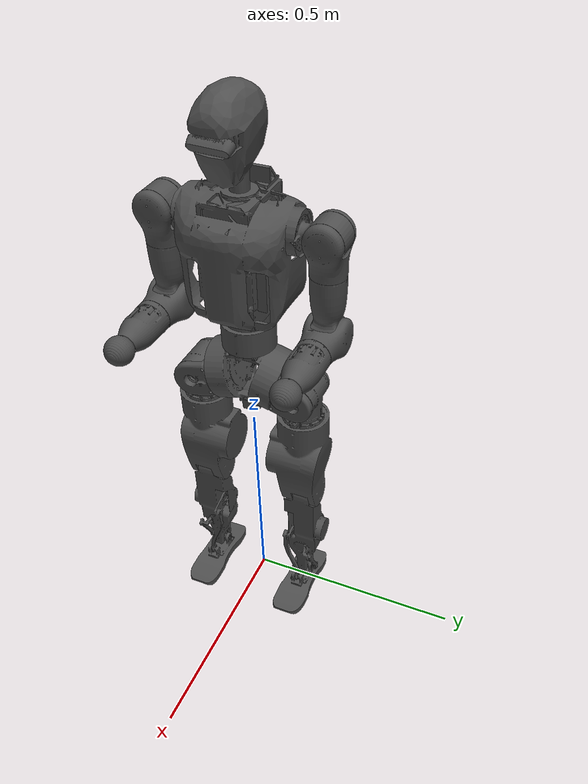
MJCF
<mujoco model="N1">
  <compiler angle="radian" meshdir="assets" autolimits="true"/>

  <default>
    <default class="N1">
      <default class="visual">
        <geom group="2" type="mesh" contype="0" conaffinity="0" rgba="0.3 0.3 0.3 1"/>
      </default>
      <default class="collision">
        <geom group="3" mass="0" density="0" rgba="0.7 0.7 0.7 1"/>
      </default>
      <default class="attach">
        <site group="4" type="sphere" size="0.005" rgba="1 1 1 1"/>
      </default>
      <default class="joint_8029E">
        <joint armature="0.12109824" range="0 0" actuatorfrcrange="-95 95"/>
      </default>
      <default class="joint_6043E">
        <joint armature="0.167592" range="0 0" actuatorfrcrange="-54 54"/>
      </default>
      <default class="joint_4530E">
        <joint armature="0.0312822" range="0 0" actuatorfrcrange="-30 30"/>
      </default>
      <default class="motor_8029E">
        <motor ctrlrange="-95 95"/>
      </default>
      <default class="motor_6043E">
        <motor ctrlrange="-54 54"/>
      </default>
      <default class="motor_4530E">
        <motor ctrlrange="-30 30"/>
      </default>
    </default>
  </default>

  <asset>
    <mesh name="base_link" content_type="model/stl" file="base_link.stl"/>
    <mesh name="torso_link" content_type="model/stl" file="torso_link.stl"/>
    <mesh name="camera_link" content_type="model/stl" file="camera_link.stl"/>
    <mesh name="imu_link" content_type="model/stl" file="imu_link.stl"/>

    <!-- left leg -->
    <mesh name="left_thigh_pitch_link" content_type="model/stl" file="left_thigh_pitch_link.stl"/>
    <mesh name="left_thigh_roll_link" content_type="model/stl" file="left_thigh_roll_link.stl"/>
    <mesh name="left_thigh_yaw_link" content_type="model/stl" file="left_thigh_yaw_link.stl"/>
    <mesh name="left_shank_pitch_link" content_type="model/stl" file="left_shank_pitch_link.stl"/>
    <mesh name="left_foot_roll_link" content_type="model/stl" file="left_foot_roll_link.stl"/>
    <mesh name="left_foot_pitch_link" content_type="model/stl" file="left_foot_pitch_link.stl"/>

    <!-- right leg -->
    <mesh name="right_thigh_pitch_link" content_type="model/stl" file="right_thigh_pitch_link.stl"/>
    <mesh name="right_thigh_roll_link" content_type="model/stl" file="right_thigh_roll_link.stl"/>
    <mesh name="right_thigh_yaw_link" content_type="model/stl" file="right_thigh_yaw_link.stl"/>
    <mesh name="right_shank_pitch_link" content_type="model/stl" file="right_shank_pitch_link.stl"/>
    <mesh name="right_foot_roll_link" content_type="model/stl" file="right_foot_roll_link.stl"/>
    <mesh name="right_foot_pitch_link" content_type="model/stl" file="right_foot_pitch_link.stl"/>

    <!-- waist -->
    <mesh name="waist_yaw_link" content_type="model/stl" file="waist_yaw_link.stl"/>

    <!-- left arm -->
    <mesh name="left_upper_arm_pitch_link" content_type="model/stl" file="left_upper_arm_pitch_link.stl"/>
    <mesh name="left_upper_arm_roll_link" content_type="model/stl" file="left_upper_arm_roll_link.stl"/>
    <mesh name="left_upper_arm_yaw_link" content_type="model/stl" file="left_upper_arm_yaw_link.stl"/>
    <mesh name="left_lower_arm_pitch_link" content_type="model/stl" file="left_lower_arm_pitch_link.stl"/>
    <mesh name="left_hand_yaw_link" content_type="model/stl" file="left_hand_yaw_link.stl"/>
    <mesh name="left_end_effector_link" content_type="model/stl" file="left_end_effector_link.stl"/>

    <!-- right arm -->
    <mesh name="right_upper_arm_pitch_link" content_type="model/stl" file="right_upper_arm_pitch_link.stl"/>
    <mesh name="right_upper_arm_roll_link" content_type="model/stl" file="right_upper_arm_roll_link.stl"/>
    <mesh name="right_upper_arm_yaw_link" content_type="model/stl" file="right_upper_arm_yaw_link.stl"/>
    <mesh name="right_lower_arm_pitch_link" content_type="model/stl" file="right_lower_arm_pitch_link.stl"/>
    <mesh name="right_hand_yaw_link" content_type="model/stl" file="right_hand_yaw_link.stl"/>
    <mesh name="right_end_effector_link" content_type="model/stl" file="right_end_effector_link.stl"/>
  </asset>

  <worldbody>
    <light mode="targetbodycom" target="base_link" pos="1.40 0 1.40"/>
    <body name="base_link" pos="0 0 0.7">
      <freejoint name="base_free_joint"/>
      <inertial pos="0.00025493 1.049e-05 -0.05502" quat="0.704566 0.709615 0.00402273 -0.00405522" mass="3.18"
        diaginertia="0.0111393 0.00899019 0.00761893"/>
      <geom class="visual" mesh="base_link"/>
      <geom class="collision" size="0.065 0.0675" pos="0 0 -0.05" quat="0.707388 0.706825 0 0" type="cylinder"/>
      <!-- left leg -->
      <body name="left_thigh_pitch_link" pos="0 0.050453 -0.067365" quat="0.991445 -0.130526 0 0">
        <inertial pos="-0.017114 0.035514 0.00025368" quat="0.233743 0.664829 -0.241027 0.667287" mass="1.31"
          diaginertia="0.00353445 0.00312547 0.00141578"/>
        <joint class="joint_8029E" name="left_hip_pitch_joint" pos="0 0 0" axis="0 1 0" range="-2.617 2.617"/>
        <geom class="visual" mesh="left_thigh_pitch_link"/>
        <body name="left_thigh_roll_link" pos="0 0.072 0" quat="0.991445 0.130526 0 0">
          <inertial pos="-0.0029103 -4.92e-06 -0.020023" quat="0.997816 -0.00139921 -0.0625676 -0.0211339" mass="1.35"
            diaginertia="0.00189889 0.00182639 0.00129812"/>
          <joint class="joint_6043E" name="left_hip_roll_joint" pos="0 0 0" axis="1 0 0" range="-0.261 1.57"/>
          <geom class="visual" mesh="left_thigh_roll_link"/>
          <geom class="collision" size="0.0415 0.06" quat="0.707388 0 0.706825 0" type="cylinder"/>
          <body name="left_thigh_yaw_link" pos="0 0 -0.0815">
            <inertial pos="0.0021441 -0.010608 -0.086616" quat="0.468171 -0.0465258 0.0232059 0.882107" mass="3.37"
              diaginertia="0.0149854 0.0146941 0.0052015"/>
            <joint class="joint_6043E" name="left_hip_yaw_joint" pos="0 0 0" axis="0 0 1" range="-2.617 2.617"/>
            <geom class="visual" mesh="left_thigh_yaw_link"/>
            <geom class="collision" size="0.06 0.095" pos="0 0 -0.08" type="cylinder"/>
            <body name="left_shank_pitch_link" pos="0 0 -0.2075">
              <inertial pos="0.0027736 0.0049964 -0.13547" quat="0.865626 -0.00504699 0.0114018 0.500536" mass="2.21"
                diaginertia="0.0135888 0.0135126 0.00161696"/>
              <joint class="joint_8029E" name="left_knee_pitch_joint" pos="0 0 0" axis="0 1 0" range="-0.0872 2.356"/>
              <geom class="visual" mesh="left_shank_pitch_link"/>
              <geom class="collision" size="0.04 0.1" pos="0 0 -0.12" type="cylinder"/>
              <body name="left_foot_roll_link" pos="0 0 -0.28">
                <inertial pos="0 0.0018625 0" quat="0.5 0.5 -0.5 0.5" mass="0.113"
                  diaginertia="2.927e-05 2.49e-05 1.175e-05"/>
                <joint class="joint_4530E" name="left_ankle_roll_joint" pos="0 0 0" axis="1 0 0" range="-0.436 0.436"/>
                <geom class="visual" mesh="left_foot_roll_link"/>
                <body name="left_foot_pitch_link">
                  <inertial pos="0.031083 -0.00011033 -0.031859" quat="5.38314e-05 0.70921 -0.0030347 0.704991"
                    mass="0.528" diaginertia="0.00183246 0.00168042 0.000253637"/>
                  <joint class="joint_4530E" name="left_ankle_pitch_joint" pos="0 0 0" axis="0 1 0"
                    range="-0.785 0.785"/>
                  <geom class="visual" mesh="left_foot_pitch_link"/>
                  <geom class="collision" type="mesh" mesh="left_foot_pitch_link"/>
                </body>
              </body>
            </body>
          </body>
        </body>
      </body>
      <!-- right leg -->
      <body name="right_thigh_pitch_link" pos="0 -0.050453 -0.067365" quat="0.991445 0.130526 0 0">
        <inertial pos="-0.017114 -0.035515 0.0002533" quat="-0.233728 0.66481 0.241038 0.667308" mass="1.31"
          diaginertia="0.00353425 0.00312543 0.00141582"/>
        <joint class="joint_8029E" name="right_hip_pitch_joint" pos="0 0 0" axis="0 1 0" range="-2.617 2.617"/>
        <geom class="visual" mesh="right_thigh_pitch_link"/>
        <body name="right_thigh_roll_link" pos="0 -0.072 0" quat="0.991445 -0.130526 0 0">
          <inertial pos="-0.0029092 1.208e-05 -0.020023" quat="0.997769 -0.000380296 -0.0626363 -0.0230831" mass="1.35"
            diaginertia="0.00189884 0.00182645 0.00129811"/>
          <joint class="joint_6043E" name="right_hip_roll_joint" pos="0 0 0" axis="1 0 0" range="-1.57 0.261"/>
          <geom class="visual" mesh="right_thigh_roll_link"/>
          <geom class="collision" size="0.0415 0.06" quat="0.707388 0 0.706825 0" type="cylinder"/>
          <body name="right_thigh_yaw_link" pos="0 0 -0.0815">
            <inertial pos="0.002043 0.010083 -0.086622" quat="0.877122 0.0212301 -0.0463129 0.477557" mass="3.37"
              diaginertia="0.0150086 0.0147999 0.00521055"/>
            <joint class="joint_6043E" name="right_hip_yaw_joint" pos="0 0 0" axis="0 0 1" range="-2.617 2.617"/>
            <geom class="visual" mesh="right_thigh_yaw_link"/>
            <geom class="collision" size="0.06 0.095" pos="0 0 -0.08" type="cylinder"/>
            <body name="right_shank_pitch_link" pos="0 0 -0.2075">
              <inertial pos="0.0026916 -0.004784 -0.13593" quat="0.483728 0.0109122 -0.00494483 0.875136" mass="2.21"
                diaginertia="0.0134062 0.0133395 0.00163604"/>
              <joint class="joint_8029E" name="right_knee_pitch_joint" pos="0 0 0" axis="0 1 0" range="-0.0872 2.356"/>
              <geom class="visual" mesh="right_shank_pitch_link"/>
              <geom class="collision" size="0.04 0.1" pos="0 0 -0.12" type="cylinder"/>
              <body name="right_foot_roll_link" pos="0 0 -0.28">
                <inertial pos="0 -0.0018793 0" quat="0.5 0.5 -0.5 0.5" mass="0.113"
                  diaginertia="2.933e-05 2.497e-05 1.175e-05"/>
                <joint class="joint_4530E" name="right_ankle_roll_joint" pos="0 0 0" axis="1 0 0" range="-0.436 0.436"/>
                <geom class="visual" mesh="right_foot_roll_link"/>
                <body name="right_foot_pitch_link">
                  <inertial pos="0.031082 0.0001577 -0.031593" quat="-0.00199687 0.709212 0.00129162 0.704991"
                    mass="0.528" diaginertia="0.00183246 0.00168033 0.000253623"/>
                  <joint class="joint_4530E" name="right_ankle_pitch_joint" pos="0 0 0" axis="0 1 0"
                    range="-0.785 0.785"/>
                  <geom class="visual" mesh="right_foot_pitch_link"/>
                  <geom class="collision" type="mesh" mesh="right_foot_pitch_link"/>
                </body>
              </body>
            </body>
          </body>
        </body>
      </body>
      <!-- imu -->
      <body name="imu_link" pos="0 0 -0.1472">
        <inertial pos="-0.0071125 0 0.00072936" quat="0 0.719035 0 0.694973" mass="0.038"
          diaginertia="2.3377e-05 2.012e-05 8.67298e-06"/>
        <geom class="visual" mesh="imu_link"/>
        <site class="attach" name="imu_sensor"/>
      </body>
      <!-- waist -->
      <body name="waist_yaw_link" pos="0 0 0.0256">
        <inertial pos="0.00025493 1.049e-05 -0.05502" quat="0.704566 0.709615 0.00402273 -0.00405522" mass="3.18"
          diaginertia="0.0111393 0.00899019 0.00761893"/>
        <joint class="joint_6043E" name="waist_yaw_joint" pos="0 0 0" axis="0 0 1" range="-2.617 2.617"/>
        <geom class="visual" mesh="waist_yaw_link"/>
        <geom class="collision" size="0.06 0.0275" pos="0 0 0.04" type="cylinder"/>
        <body name="torso_link" pos="0 0 0.2598">
          <inertial pos="0.0070827 0.00038627 -0.041747" quat="0.999988 0.00410371 0.00174858 0.002149" mass="7.99"
            diaginertia="0.0818958 0.0707902 0.035398"/>
          <geom class="visual" mesh="torso_link"/>
          <geom class="collision" size="0.1 0.11" pos="0 0 -0.06" type="cylinder"/>
          <geom class="collision" size="0.08" pos="0 0 0.19"/>
          <body name="camera_link" pos="0.071343 -0.0048077 0.17959" quat="0.965379 0.00870596 0.258673 -0.032491">
            <inertial pos="0.011772 0.0016608 2.48e-06" quat="0.512805 0.516489 -0.482706 0.487099" mass="0.0382"
              diaginertia="2.48306e-05 2.46608e-05 3.65862e-06"/>
            <geom class="visual" mesh="camera_link"/>
          </body>
          <!-- left arm -->
          <body name="left_upper_arm_pitch_link" pos="0 0.09765 0">
            <inertial pos="-0.00045952 0.060859 7.73e-05" quat="0.704068 0.708238 -0.0156868 0.0494157" mass="0.885"
              diaginertia="0.000836529 0.000813953 0.000518948"/>
            <joint class="joint_6043E" name="left_shoulder_pitch_joint" pos="0 0 0" axis="0 1 0" range="-2.966 2.966"/>
            <geom class="visual" mesh="left_upper_arm_pitch_link"/>
            <body name="left_upper_arm_roll_link" pos="0 0.078 0">
              <inertial pos="0.0049529 0.00053148 -0.043369" quat="0.711144 0.0399767 0.0425776 0.700616" mass="0.716"
                diaginertia="0.00189703 0.00180449 0.000471746"/>
              <joint class="joint_4530E" name="left_shoulder_roll_joint" pos="0 0 0" axis="1 0 0" range="-0.174 2.792"/>
              <geom class="visual" mesh="left_upper_arm_roll_link"/>
              <geom class="collision" size="0.032"/>
              <body name="left_upper_arm_yaw_link" pos="0 0 -0.1005">
                <inertial pos="0 -0.00057869 -0.060729" quat="0.671373 -0.00487491 0.00703306 0.74107" mass="0.913"
                  diaginertia="0.00291415 0.00289523 0.000604574"/>
                <joint class="joint_4530E" name="left_shoulder_yaw_joint" pos="0 0 0" axis="0 0 1"
                  range="-1.832 1.832"/>
                <geom class="visual" mesh="left_upper_arm_yaw_link"/>
                <geom class="collision" size="0.032 0.06" type="cylinder"/>
                <body name="left_lower_arm_pitch_link" pos="0 0 -0.1095" quat="0.707105 0 -0.707108 0">
                  <inertial pos="-0.00053164 0.0049499 -0.04337" quat="0.998268 -0.0583286 -0.0018086 -0.00739958"
                    mass="0.716" diaginertia="0.00189663 0.00180416 0.000471669"/>
                  <joint class="joint_4530E" name="left_elbow_pitch_joint" pos="0 0 0" axis="0 1 0"
                    range="-0.349 1.658"/>
                  <geom class="visual" mesh="left_lower_arm_pitch_link"/>
                  <body name="left_hand_yaw_link" pos="0 0 -0.1005">
                    <inertial pos="-0.0020835 6.386e-05 -0.013715" quat="0.999837 -0.00132735 -0.00221673 0.0178597"
                      mass="0.44" diaginertia="0.000433576 0.000407568 0.000270066"/>
                    <joint class="joint_4530E" name="left_wrist_yaw_joint" pos="0 0 0" axis="0 0 1"
                      range="-1.832 1.832"/>
                    <geom class="visual" mesh="left_hand_yaw_link"/>
                    <geom class="collision" size="0.032 0.06" type="cylinder"/>
                    <body name="left_end_effector_link" pos="0 0 -0.1045">
                      <inertial pos="0.003465 0 0" quat="0.5 0.5 -0.5 0.5" mass="0.0994"
                        diaginertia="4.538e-05 3.741e-05 3.741e-05"/>
                      <geom class="visual" mesh="left_end_effector_link"/>
                      <geom class="collision" size="0.02751"/>
                    </body>
                  </body>
                </body>
              </body>
            </body>
          </body>
          <!-- right arm -->
          <body name="right_upper_arm_pitch_link" pos="0 -0.09765 0">
            <inertial pos="-0.00045952 -0.060859 -7.73e-05" quat="0.704068 0.708238 0.0156868 -0.0494157" mass="0.885"
              diaginertia="0.000836529 0.000813953 0.000518948"/>
            <geom class="visual" mesh="right_upper_arm_pitch_link"/>
            <joint class="joint_6043E" name="right_shoulder_pitch_joint" pos="0 0 0" axis="0 1 0" range="-2.966 2.966"/>
            <body name="right_upper_arm_roll_link" pos="0 -0.078 0">
              <inertial pos="0.0049504 -0.0005218 -0.043377" quat="0.700715 0.0424814 0.0400053 0.711051" mass="0.716"
                diaginertia="0.00189633 0.00180386 0.000471402"/>
              <joint class="joint_4530E" name="right_shoulder_roll_joint" pos="0 0 0" axis="1 0 0"
                range="-2.792 0.174"/>
              <geom class="visual" mesh="right_upper_arm_roll_link"/>
              <geom class="collision" size="0.032"/>
              <body name="right_upper_arm_yaw_link" pos="0 0 -0.1005">
                <inertial pos="0 0.00055669 -0.060729" quat="0.621814 0.00470192 -0.00715628 0.783118" mass="0.913"
                  diaginertia="0.00291604 0.00289334 0.000604613"/>
                <joint class="joint_4530E" name="right_shoulder_yaw_joint" pos="0 0 0" axis="0 0 1"
                  range="-1.832 1.832"/>
                <geom class="visual" mesh="right_upper_arm_yaw_link"/>
                <geom class="collision" size="0.032 0.06" type="cylinder"/>
                <body name="right_lower_arm_pitch_link" pos="0 0 -0.1095" quat="0.707105 0 -0.707108 0">
                  <inertial pos="-0.0005218 -0.0049504 -0.043377" quat="0.998269 0.0583269 -0.00175091 0.00730818"
                    mass="0.716" diaginertia="0.00189633 0.00180386 0.000471402"/>
                  <joint class="joint_4530E" name="right_elbow_pitch_joint" pos="0 0 0" axis="0 1 0"
                    range="-0.349 1.658"/>
                  <geom class="visual" mesh="right_lower_arm_pitch_link"/>
                  <body name="right_hand_yaw_link" pos="0 0 -0.1005">
                    <inertial pos="-0.00020719 -1.94e-05 -0.013715" quat="0.999257 -0.00336645 -0.00376299 0.0381993"
                      mass="0.44" diaginertia="0.000432418 0.000408738 0.000270055"/>
                    <joint class="joint_4530E" name="right_wrist_yaw_joint" pos="0 0 0" axis="0 0 1"
                      range="-1.832 1.832"/>
                    <geom class="visual" mesh="right_hand_yaw_link"/>
                    <geom class="collision" size="0.032 0.06" type="cylinder"/>
                    <body name="right_end_effector_link" pos="0 0 -0.1045">
                      <inertial pos="0.003465 0 0" quat="0.5 0.5 -0.5 0.5" mass="0.0994"
                        diaginertia="4.538e-05 3.741e-05 3.741e-05"/>
                      <geom class="visual" mesh="right_end_effector_link"/>
                      <geom class="collision" size="0.02751"/>
                    </body>
                  </body>
                </body>
              </body>
            </body>
          </body>
        </body>
      </body>
    </body>
  </worldbody>

  <actuator>
    <!-- left leg -->
    <motor class="motor_8029E" name="left_hip_pitch_link" joint="left_hip_pitch_joint"/>
    <motor class="motor_6043E" name="left_hip_roll_link" joint="left_hip_roll_joint"/>
    <motor class="motor_6043E" name="left_hip_yaw_link" joint="left_hip_yaw_joint"/>
    <motor class="motor_8029E" name="left_knee_pitch_link" joint="left_knee_pitch_joint"/>
    <motor class="motor_4530E" name="left_ankle_roll_link" joint="left_ankle_roll_joint"/>
    <motor class="motor_4530E" name="left_ankle_pitch_link" joint="left_ankle_pitch_joint"/>

    <!-- right leg -->
    <motor class="motor_8029E" name="right_hip_pitch" joint="right_hip_pitch_joint"/>
    <motor class="motor_6043E" name="right_hip_roll" joint="right_hip_roll_joint"/>
    <motor class="motor_6043E" name="right_hip_yaw" joint="right_hip_yaw_joint"/>
    <motor class="motor_8029E" name="right_knee_pitch" joint="right_knee_pitch_joint"/>
    <motor class="motor_4530E" name="right_ankle_roll" joint="right_ankle_roll_joint"/>
    <motor class="motor_4530E" name="right_ankle_pitch" joint="right_ankle_pitch_joint"/>

    <!-- waist -->
    <motor class="motor_6043E" name="waist_yaw" joint="waist_yaw_joint"/>

    <!-- left arm -->
    <motor class="motor_6043E" name="left_shoulder_pitch" joint="left_shoulder_pitch_joint"/>
    <motor class="motor_4530E" name="left_shoulder_roll" joint="left_shoulder_roll_joint"/>
    <motor class="motor_4530E" name="left_shoulder_yaw" joint="left_shoulder_yaw_joint"/>
    <motor class="motor_4530E" name="left_elbow_pitch" joint="left_elbow_pitch_joint"/>
    <motor class="motor_4530E" name="left_wrist_yaw" joint="left_wrist_yaw_joint"/>

    <!-- right arm -->
    <motor class="motor_6043E" name="right_shoulder_pitch" joint="right_shoulder_pitch_joint"/>
    <motor class="motor_4530E" name="right_shoulder_roll" joint="right_shoulder_roll_joint"/>
    <motor class="motor_4530E" name="right_shoulder_yaw" joint="right_shoulder_yaw_joint"/>
    <motor class="motor_4530E" name="right_elbow_pitch" joint="right_elbow_pitch_joint"/>
    <motor class="motor_4530E" name="right_wrist_yaw" joint="right_wrist_yaw_joint"/>
  </actuator>

  <sensor>
    <framequat name="orientation" objtype="site" objname="imu_sensor"/>
    <gyro name="angular-velocity" site="imu_sensor" cutoff="34.9"/>
    <accelerometer name="linear-acceleration" site="imu_sensor" cutoff="157"/>
  </sensor>
</mujoco>
